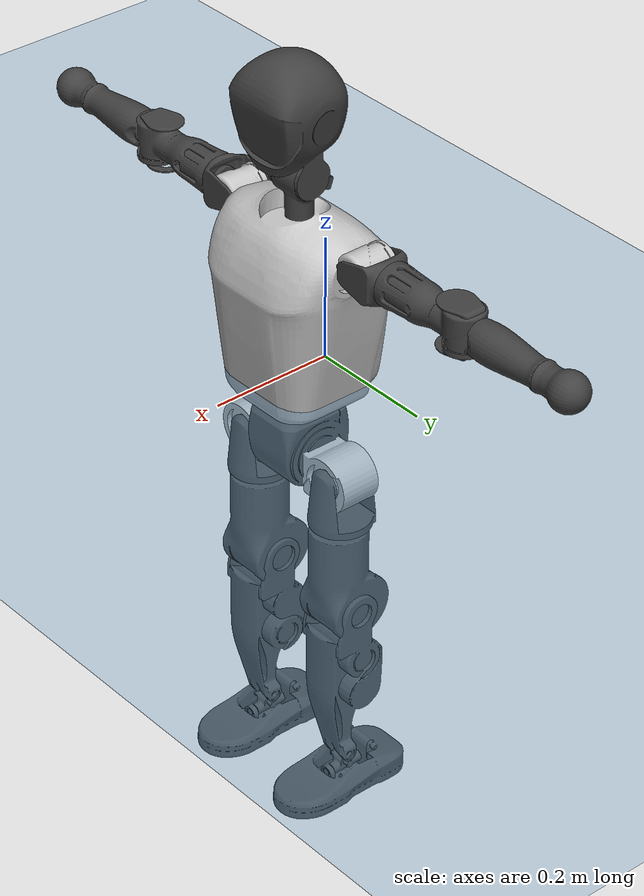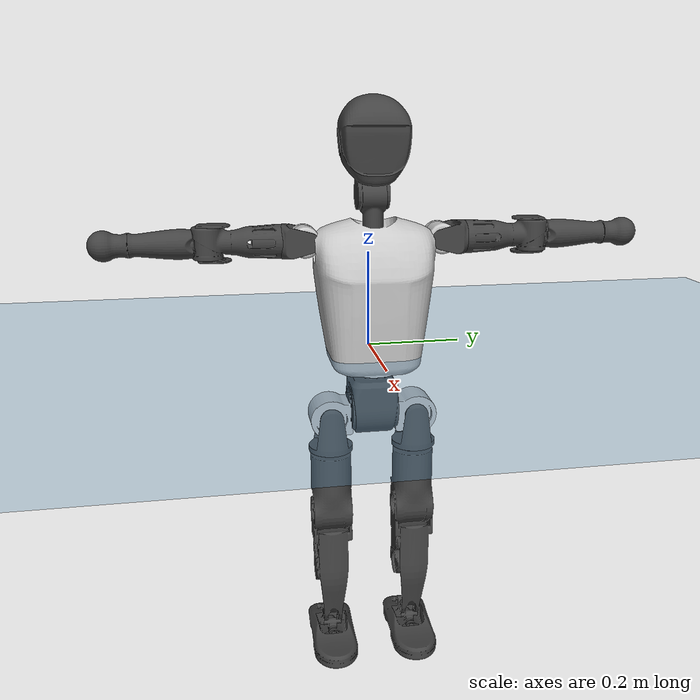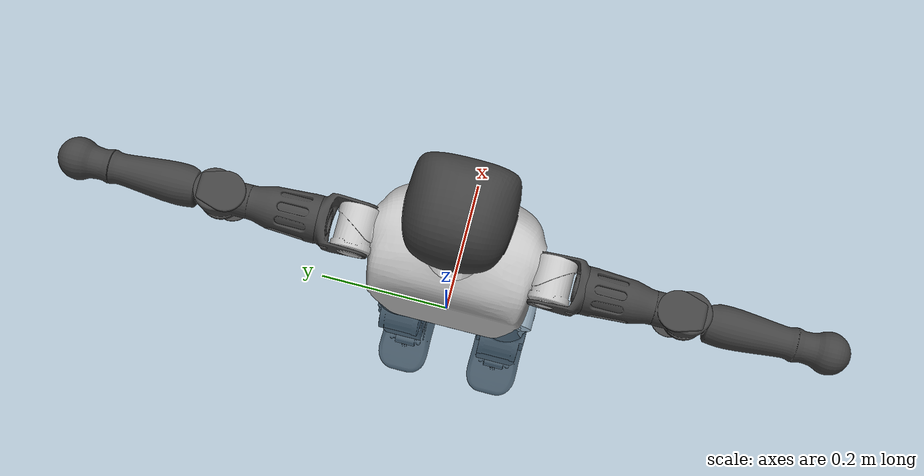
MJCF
<mujoco model="T1">
  <compiler angle="radian" assetdir="assets" balanceinertia="true" inertiafromgeom="false"/>

  <option timestep="0.005" density="1.2" viscosity="2e-05"/>

  <size nkey="1"/>

  <visual>
    <quality shadowsize="8192"/>
    <map shadowclip="0.5"/>
  </visual>

  <default>
    <default class="/">
      <joint armature="0.01" damping="0.01" frictionloss="0.1"/>
      <geom contype="0" conaffinity="0" group="1" solref="-1000 -80"/>
      <site size="0.01 0.005 0.005" group="5"/>
      <general forcelimited="true" biastype="affine" gainprm="25" biasprm="0 -25 -0.6"/>
      <default class="t1">
        <geom rgba="0.25 0.25 0.25 1"/>
        <default class="visual">
          <geom type="mesh" group="2"/>
        </default>
        <default class="collision">
          <geom group="3"/>
        </default>
        <default class="foot">
          <geom size="0.1115 0.05 0.015" type="box" condim="6" group="4" priority="1" solimp="0.015 1 0.015"/>
        </default>
        <default class="reward_collision_sphere">
          <geom group="5" rgba="1 0 0 1"/>
        </default>
      </default>
    </default>
  </default>

  <asset>
    <texture type="skybox" colorspace="auto" name="//unnamed_texture_0" builtin="gradient" rgb1="0.95 0.95 0.95" rgb2="0.95 0.95 0.95" width="100" height="600"/>
    <texture type="2d" colorspace="auto" name="texplane" builtin="checker" rgb1="0.345 0.575 0.748" rgb2="0.345 0.575 0.748" markrgb="1 1 1" width="512" height="512"/>
    <material name="MatPlane" class="/" texture="texplane" texuniform="true" texrepeat="2 2" specular="0.9"/>
    <mesh name="Trunk" class="/" file="Trunk.stl"/>
    <mesh name="H1" class="/" file="H1.stl"/>
    <mesh name="H2" class="/" file="H2.stl"/>
    <mesh name="AL1" class="/" file="AL1.stl"/>
    <mesh name="AL2" class="/" file="AL2.stl"/>
    <mesh name="AL3" class="/" file="AL3.stl"/>
    <mesh name="left_hand_link" class="/" file="left_hand_link.stl"/>
    <mesh name="AR1" class="/" file="AR1.stl"/>
    <mesh name="AR2" class="/" file="AR2.stl"/>
    <mesh name="AR3" class="/" file="AR3.stl"/>
    <mesh name="right_hand_link" class="/" file="right_hand_link.stl"/>
    <mesh name="Waist" class="/" file="Waist.stl"/>
    <mesh name="Hip_Pitch_Left" class="/" file="Hip_Pitch_Left.stl"/>
    <mesh name="Hip_Roll_Left" class="/" file="Hip_Roll_Left.stl"/>
    <mesh name="Hip_Yaw_Left" class="/" file="Hip_Yaw_Left.stl"/>
    <mesh name="Shank_Left" class="/" file="Shank_Left.stl"/>
    <mesh name="Ankle_Cross_Left" class="/" file="Ankle_Cross_Left.stl"/>
    <mesh name="left_foot_link" class="/" file="left_foot_link.stl"/>
    <mesh name="Hip_Pitch_Right" class="/" file="Hip_Pitch_Right.stl"/>
    <mesh name="Hip_Roll_Right" class="/" file="Hip_Roll_Right.stl"/>
    <mesh name="Hip_Yaw_Right" class="/" file="Hip_Yaw_Right.stl"/>
    <mesh name="Shank_Right" class="/" file="Shank_Right.stl"/>
    <mesh name="Ankle_Cross_Right" class="/" file="Ankle_Cross_Right.stl"/>
    <mesh name="right_foot_link" class="/" file="right_foot_link.stl"/>
  </asset>

  <worldbody>
    <geom name="floor" class="/" size="100 100 0.125" type="plane" group="0" material="MatPlane"/>
    <light name="toplight_shadow" class="/" pos="0 0 5" dir="0.0990148 0.0990148 -0.990148" type="directional" ambient="0.04 0.04 0.04" diffuse="0.55 0.55 0.55" specular="0.12 0.12 0.12"/>
    <light name="toplight_fill" class="/" pos="0 0 5" dir="0.0990148 0.0990148 -0.990148" type="directional" castshadow="false" ambient="0.04 0.04 0.04" diffuse="0.3 0.3 0.3" specular="0.08 0.08 0.08"/>
    <body name="trunk" childclass="t1" pos="-3.25231e-05 3.92477e-05 0.000416102" quat="1 -0.000202556 3.07794e-05 0.000160859">
      <inertial pos="0.0423907 -0.0011718 0.112415" quat="0.999968 0.00374213 -0.006812 0.00164981" mass="8.69748" diaginertia="0.0268884 0.0400453 0.0748809"/>
      <joint name="//unnamed_joint_0" type="free" armature="0" damping="0" frictionloss="0"/>
      <geom name="//unnamed_geom_1" class="visual" rgba="0.76 0.76 0.76 1" mesh="Trunk"/>
      <geom name="//unnamed_geom_2" class="collision" size="0.0681793 0.0909057 0.136359" pos="0.0469617 0 0.12793" type="box"/>
      <geom name="//unnamed_geom_3" class="reward_collision_sphere" size="0.104542" pos="0.0469617 0 0.106609"/>
      <geom name="//unnamed_geom_4" class="reward_collision_sphere" size="0.0136359" pos="0.0469617 0.0746632 0"/>
      <geom name="//unnamed_geom_5" class="reward_collision_sphere" size="0.0136359" pos="0.0469617 -0.0746632 0"/>
      <geom name="//unnamed_geom_6" class="reward_collision_sphere" size="0.0136359" pos="0.0469617 0.0939879 0.191895"/>
      <geom name="//unnamed_geom_7" class="reward_collision_sphere" size="0.0136359" pos="0.0469617 -0.0939879 0.191895"/>
      <site name="imu" pos="0.00886697 -0.00516731 -0.00482553" size="0.00909057"/>
      <camera name="track" pos="0 -1.75678 0" quat="0.707107 0.707107 0 0" mode="trackcom"/>
      <camera name="ego_camera" pos="0.0954888 0 0.447756" quat="-0.5 -0.5 0.5 0.5"/>
      <body name="H1" pos="0.0495069 0.000295822 0.258731" quat="1 -4.59004e-05 0.000218444 0.00039602">
        <inertial pos="-0.00131169 -0.001427 0.0610275" quat="0.763008 -0.0117493 -0.000226657 0.646282" mass="0.338719" diaginertia="7.178e-05 0.000117073 0.000209832"/>
        <joint name="AAHead_yaw" pos="0 0 0" axis="0.000583975 -0.000261913 1" stiffness="0.00315835" range="-1.58866 1.56041" armature="0.00904252" damping="0.00807396" frictionloss="0.0928059"/>
        <geom name="//unnamed_geom_8" class="visual" mesh="H1"/>
        <body name="H2" pos="-0.000622158 -0.00152081 0.0654751" quat="1 0.000137289 0.000117533 -3.78463e-05">
          <inertial pos="0.00705503 0.00208275 0.104671" quat="0.987939 0.108552 -0.0776626 -0.0784958" mass="0.483451" diaginertia="0.000590119 0.00101325 0.00235567"/>
          <joint name="Head_pitch" pos="0 0 0" axis="0.0012982 -0.999999 0.000461453" range="-1.22257 0.34473" armature="0.00865981" damping="0.00737968" frictionloss="0.0907148"/>
          <geom name="//unnamed_geom_9" class="visual" mesh="H2"/>
          <geom name="//unnamed_geom_10" class="collision" size="0.0727246" pos="0.00782695 0 0.117269"/>
          <geom name="//unnamed_geom_11" class="reward_collision_sphere" size="0.0818152" pos="0.0156539 0 0.106609"/>
        </body>
      </body>
      <body name="AL1" pos="0.0463208 0.0942942 0.234449" quat="1 0.000246383 0.000476909 -0.000227708">
        <inertial pos="-0.00170292 0.0383057 0.00127648" quat="0.507419 0.494891 -0.501354 0.496239" mass="0.397376" diaginertia="0.000398644 0.000675272 0.000396986"/>
        <joint name="Left_Shoulder_Pitch" pos="0 0 0" axis="-0.00285953 0.999995 -0.00149939" range="-3.33107 1.22732" armature="0.00916072" damping="0.0118858" frictionloss="0.0906648"/>
        <geom name="//unnamed_geom_12" class="visual" rgba="0.76 0.76 0.76 1" mesh="AL1"/>
        <body name="AL2" pos="2.35657e-05 0.0436672 -0.000352622" quat="0.999999 0.000886873 -0.000525581 -1.07637e-05">
          <inertial pos="0.0016209 0.0335929 -0.0004206" quat="0.486236 0.512407 -0.487819 0.51288" mass="0.125231" diaginertia="0.000119311 0.000184595 0.000246814"/>
          <joint name="Left_Shoulder_Roll" pos="0 0 0" axis="-0.999987 -0.00448373 -0.00254905" range="-1.56508 1.73158" armature="0.00868319" damping="0.00196916" frictionloss="0.0948107"/>
          <geom name="//unnamed_geom_13" class="visual" mesh="AL2"/>
          <body name="AL3" pos="-1.461e-05 0.0549489 0.000183327" quat="1 0.000217791 -0.000713474 -0.000352212">
            <inertial pos="0.000316727 0.0752735 -0.000382113" quat="0.707921 0.706288 -0.00225221 0.000114068" mass="0.779048" diaginertia="0.00383165 0.00680258 0.000879554"/>
            <joint name="Left_Elbow_Pitch" pos="0 0 0" axis="-0.000799897 -0.999999 -0.00113628" range="-2.25415 2.26197" armature="0.00898966" damping="0.0117612" frictionloss="0.0894896"/>
            <geom name="//unnamed_geom_14" class="visual" mesh="AL3"/>
            <geom name="//unnamed_geom_15" class="collision" size="0.0272717 0.0681793" pos="0 0.0439196 0" quat="0.707105 0.707108 0 0" type="cylinder"/>
            <geom name="//unnamed_geom_16" class="reward_collision_sphere" size="0.0327261"/>
            <body name="left_hand_link" pos="0.000277617 0.131373 0.000498999" quat="1 -0.000480415 0.000309374 0.000395538">
              <inertial pos="-0.000275784 0.0972039 -0.000683481" quat="0.708325 0.705866 0.00489889 0.00202792" mass="0.240403" diaginertia="0.00231294 0.0041349 0.000292258"/>
              <joint name="Left_Elbow_Yaw" pos="0 0 0" axis="-0.00781004 1.44855e-06 0.99997" range="-2.44657 0.00708476" armature="0.00920069" damping="0.0119667" frictionloss="0.0989219"/>
              <geom name="//unnamed_geom_17" class="visual" mesh="left_hand_link"/>
              <geom name="//unnamed_geom_18" class="collision" size="0.0272717 0.0795425" pos="0 0.114191 0" quat="0.707105 0.707108 0 0" type="cylinder"/>
              <geom name="//unnamed_geom_19" class="reward_collision_sphere" size="0.0454529"/>
              <geom name="//unnamed_geom_20" class="reward_collision_sphere" size="0.031817" pos="0 0.096623 0"/>
              <geom name="//unnamed_geom_21" class="reward_collision_sphere" size="0.031817" pos="0 0.188854 0"/>
            </body>
          </body>
        </body>
      </body>
      <body name="AR1" pos="0.0436274 -0.0922292 0.233459" quat="1 -0.000121861 0.000479501 6.90764e-05">
        <inertial pos="-0.000573666 -0.0395842 0.000475474" quat="0.50385 0.496721 -0.503715 0.495656" mass="0.391028" diaginertia="0.000398525 0.000673814 0.000401786"/>
        <joint name="Right_Shoulder_Pitch" pos="0 0 0" axis="-0.0064463 -0.999979 -1.50023e-05" stiffness="0.00924349" range="-1.19713 3.30033" armature="0.00918016" damping="0.0117927" frictionloss="0.090214"/>
        <geom name="//unnamed_geom_22" class="visual" rgba="0.76 0.76 0.76 1" mesh="AR1"/>
        <body name="AR2" pos="-0.00181161 -0.0399074 -0.00014086" quat="1 -0.000179352 0.000212684 0.000109033">
          <inertial pos="0.00347898 -0.034308 0.000531058" quat="0.512179 0.486926 -0.509702 0.490692" mass="0.119474" diaginertia="0.000114698 0.000174373 0.000241606"/>
          <joint name="Right_Shoulder_Roll" pos="0 0 0" axis="-0.999981 -0.00488752 0.00384715" range="-1.75691 1.5435" armature="0.00893772" damping="0.00550767" frictionloss="0.0853125"/>
          <geom name="//unnamed_geom_23" class="visual" mesh="AR2"/>
          <body name="AR3" pos="0.000578676 -0.051493 0.000659304" quat="1 7.73058e-06 5.32104e-05 -0.000204761">
            <inertial pos="-0.000383549 -0.0746935 0.000326435" quat="0.701393 0.712766 -0.0029223 -0.00195017" mass="0.776742" diaginertia="0.00383078 0.00667584 0.00085942"/>
            <joint name="Right_Elbow_Pitch" pos="0 0 0" axis="0.000424607 1 0.000131162" stiffness="0.00435179" range="-2.27319 2.26922" armature="0.00894598" damping="0.00587494" frictionloss="0.0976836"/>
            <geom name="//unnamed_geom_24" class="visual" mesh="AR3"/>
            <geom name="//unnamed_geom_25" class="collision" size="0.0272717 0.0681793" pos="0 -0.0439196 0" quat="0.707105 0.707108 0 0" type="cylinder"/>
            <geom name="//unnamed_geom_26" class="reward_collision_sphere" size="0.0327261"/>
            <body name="right_hand_link" pos="-0.00154851 -0.129833 -0.00107216" quat="1 1.52154e-05 -0.000221754 -0.00026177">
              <inertial pos="-0.000297243 -0.0963694 0.00221392" quat="0.704094 0.710091 -0.00384952 0.00270253" mass="0.24179" diaginertia="0.00235907 0.00414802 0.000290328"/>
              <joint name="Right_Elbow_Yaw" pos="0 0 0" axis="0.000993699 0.00431639 0.99999" range="-0.0114863 2.43793" armature="0.00995016" damping="0.00611117" frictionloss="0.091331"/>
              <geom name="//unnamed_geom_27" class="visual" mesh="right_hand_link"/>
              <geom name="//unnamed_geom_28" class="collision" size="0.0272717 0.0795425" pos="0 -0.114191 0" quat="0.707105 0.707108 0 0" type="cylinder"/>
              <geom name="//unnamed_geom_29" class="reward_collision_sphere" size="0.0454529"/>
              <geom name="//unnamed_geom_30" class="reward_collision_sphere" size="0.031817" pos="0 -0.096623 0"/>
              <geom name="//unnamed_geom_31" class="reward_collision_sphere" size="0.031817" pos="0 -0.188854 0"/>
            </body>
          </body>
        </body>
      </body>
      <body name="Waist" pos="0.0490519 -0.00220378 -0.123379" quat="1 -8.84046e-05 8.12649e-05 -0.000116104">
        <inertial pos="0.00294026 -0.000372113 0.0083618" quat="0.984036 -0.00381734 -0.177887 0.00384018" mass="1.92018" diaginertia="0.00156936 0.00270589 0.0065239"/>
        <joint name="Waist" pos="0 0 0" axis="-0.00275452 0.00111852 0.999996" range="-1.5347 1.55111" armature="0.00874023" damping="0.0111561" frictionloss="0.0886025"/>
        <geom name="//unnamed_geom_32" class="visual" mesh="Waist"/>
        <body name="Hip_Pitch_Left" pos="-0.000715358 0.0934568 0.000199685" quat="1 -0.00045955 -0.000245729 0.000296277">
          <inertial pos="0.00118211 -0.00500883 -0.0195747" quat="0.975137 0.221117 0.0145719 0.00174525" mass="0.770403" diaginertia="0.000531263 0.000785889 0.00173695"/>
          <joint name="Left_Hip_Pitch" pos="0 0 0" axis="-0.000724597 1 -0.000168282" range="-1.80294 1.56413" armature="0.00912709" damping="0.00496271" frictionloss="0.0910912"/>
          <geom name="//unnamed_geom_33" class="visual" rgba="0.76 0.76 0.76 1" mesh="Hip_Pitch_Left"/>
          <body name="Hip_Roll_Left" pos="-0.000423869 -2.63973e-05 -0.0207858" quat="1 4.75792e-05 -1.97655e-05 0.000243217">
            <inertial pos="0.00142591 0.000140321 -0.0565143" quat="0.706267 -0.00519777 -0.00682762 0.707894" mass="0.287623" diaginertia="0.000509022 0.000779693 0.000698164"/>
            <joint name="Left_Hip_Roll" pos="0 0 0" axis="-0.999995 0.00311015 -0.00104007" range="-1.57752 0.213148" armature="0.00905679" damping="0.00804243" frictionloss="0.0928631"/>
            <geom name="//unnamed_geom_34" class="visual" mesh="Hip_Roll_Left"/>
            <geom name="//unnamed_geom_35" class="reward_collision_sphere" size="0.0499982"/>
            <body name="Hip_Yaw_Left" pos="0.00180998 -0.00124089 -0.0878253" quat="1 9.31364e-05 0.000155304 -0.000190234">
              <inertial pos="-0.00593183 -0.000104942 -0.09465" quat="0.697465 -0.0419604 -0.0284222 0.714824" mass="1.64513" diaginertia="0.00759939 0.0129213 0.00353019"/>
              <joint name="Left_Hip_Yaw" pos="0 0 0" axis="-0.00150362 -0.00154051 -0.999998" range="-1.01064 1.01699" armature="0.00906656" damping="0.014787" frictionloss="0.0910311"/>
              <geom name="//unnamed_geom_36" class="visual" mesh="Hip_Yaw_Left"/>
              <geom name="//unnamed_geom_37" class="collision" size="0.0454529 0.0727246" type="cylinder"/>
              <body name="Shank_Left" pos="-0.00889914 0.000178123 -0.142456" quat="1 -0.000198449 -0.000256989 0.000171956">
                <inertial pos="-0.00430624 -0.000296526 -0.132417" quat="0.997497 0.000277304 -0.0247923 0.0662132" mass="1.27748" diaginertia="0.0102275 0.0178551 0.00253633"/>
                <joint name="Left_Knee_Pitch" pos="0 0 0" axis="-0.00271088 0.999986 -0.00449349" range="-0.0178031 2.34658" armature="0.00890992" damping="0.00673504" frictionloss="0.0948332"/>
                <geom name="//unnamed_geom_38" class="visual" mesh="Shank_Left"/>
                <geom name="//unnamed_geom_39" class="collision" size="0.0454529 0.0681793" pos="0 0 -0.12793" type="cylinder"/>
                <geom name="//unnamed_geom_40" class="reward_collision_sphere" size="0.0590887"/>
                <body name="Ankle_Cross_Left" pos="-6.75416e-05 0.00011303 -0.29879" quat="1 -0.000113586 0.000307656 -0.000106505">
                  <inertial pos="-0.00320138 -0.000658385 -0.0103938" quat="0.445714 0.549867 0.548415 0.445226" mass="0.0559058" diaginertia="8.74414e-06 1.36511e-05 1.59736e-05"/>
                  <joint name="Left_Ankle_Pitch" pos="0 0 0" axis="0.00165532 0.999994 -0.0030082" stiffness="0.00180018" range="-0.907875 0.335986" armature="0.00947872" damping="0.00313866" frictionloss="0.0954574"/>
                  <geom name="//unnamed_geom_41" class="visual" mesh="Ankle_Cross_Left"/>
                  <body name="left_foot_link" pos="-0.000253284 -0.000164672 -0.0148427" quat="1 -2.16089e-05 -7.8915e-05 0.000339441">
                    <inertial pos="0.000542233 -0.00126023 -0.00976559" quat="-0.000518638 0.620458 0.00109447 0.784239" mass="0.520937" diaginertia="0.000791106 0.00124955 0.00298775"/>
                    <joint name="Left_Ankle_Roll" pos="0 0 0" axis="-0.999998 -0.00101981 0.00174155" range="-0.434508 0.459461" armature="0.00898496" damping="0.0150862" frictionloss="0.0932849"/>
                    <geom name="//unnamed_geom_42" class="visual" mesh="left_foot_link"/>
                    <geom name="left_foot" class="foot" size="0.100316 0.0492033 0.0135315" pos="0.00782695 0 -0.0159913"/>
                    <geom name="//unnamed_geom_44" class="reward_collision_sphere" size="0.047271" pos="0.00782695 0 -0.0159913"/>
                    <geom name="//unnamed_geom_45" class="reward_collision_sphere" size="0.0272717" pos="0.074356 -0.020203 -0.0159913"/>
                    <geom name="//unnamed_geom_46" class="reward_collision_sphere" size="0.0272717" pos="-0.0547887 -0.020203 -0.0159913"/>
                    <site name="left_foot" class="foot" pos="0.00782695 0 -0.0159913" size="0.00909057"/>
                  </body>
                </body>
              </body>
            </body>
          </body>
        </body>
        <body name="Hip_Pitch_Right" pos="0.000450318 -0.0925478 0.000382347" quat="1 5.38154e-06 -8.90433e-07 4.81165e-08">
          <inertial pos="0.000247405 0.00587576 -0.0175468" quat="0.972698 -0.231368 0.0177307 -0.00361859" mass="0.762688" diaginertia="0.000527145 0.000761505 0.00171802"/>
          <joint name="Right_Hip_Pitch" pos="0 0 0" axis="3.39337e-05 -1 -0.000165539" range="-1.56821 1.79457" armature="0.00939737" damping="0.0101089" frictionloss="0.0876162"/>
          <geom name="//unnamed_geom_47" class="visual" rgba="0.76 0.76 0.76 1" mesh="Hip_Pitch_Right"/>
          <body name="Hip_Roll_Right" pos="-0.00162289 0.000954912 -0.0219965" quat="0.999999 -0.000326861 -0.00104421 1.61862e-05">
            <inertial pos="0.00302899 -0.000735043 -0.0569761" quat="0.708227 -0.00672053 -0.00748594 0.705913" mass="0.288965" diaginertia="0.00051194 0.000788532 0.000706557"/>
            <joint name="Right_Hip_Roll" pos="0 0 0" axis="-0.999997 -0.00185789 -0.0018491" range="-0.195364 1.57988" armature="0.00933746" damping="0.00833176" frictionloss="0.0912367"/>
            <geom name="//unnamed_geom_48" class="visual" mesh="Hip_Roll_Right"/>
            <geom name="//unnamed_geom_49" class="reward_collision_sphere" size="0.0499982"/>
            <body name="Hip_Yaw_Right" pos="0.00022049 -0.000173965 -0.087249" quat="1 -0.000702361 0.000299897 -0.000351893">
              <inertial pos="-0.00576255 -0.000583156 -0.0958924" quat="0.714614 -0.0320458 -0.0350316 0.697906" mass="1.63369" diaginertia="0.00778804 0.0137489 0.0035809"/>
              <joint name="Right_Hip_Yaw" pos="0 0 0" axis="0.000207679 0.00227266 -0.999997" range="-0.995525 0.969475" armature="0.00915041" damping="0.0104691" frictionloss="0.0852666"/>
              <geom name="//unnamed_geom_50" class="visual" mesh="Hip_Yaw_Right"/>
              <geom name="//unnamed_geom_51" class="collision" size="0.0454529 0.0727246" type="cylinder"/>
              <body name="Shank_Right" pos="-0.0118829 -0.00070431 -0.142749" quat="1 0.000517812 -3.09492e-05 1.30277e-05">
                <inertial pos="-0.00384853 -0.000811426 -0.13095" quat="0.999237 -0.00151063 -0.0247479 -0.0301768" mass="1.36767" diaginertia="0.0103463 0.0179643 0.00268288"/>
                <joint name="Right_Knee_Pitch" pos="0 0 0" axis="0.00294355 -0.999987 0.00412592" range="-2.33001 -6.96687e-05" armature="0.00931054" damping="0.00517735" frictionloss="0.0864829"/>
                <geom name="//unnamed_geom_52" class="visual" mesh="Shank_Right"/>
                <geom name="//unnamed_geom_53" class="collision" size="0.0454529 0.0681793" pos="0 0 -0.12793" type="cylinder"/>
                <geom name="//unnamed_geom_54" class="reward_collision_sphere" size="0.0590887"/>
                <body name="Ankle_Cross_Right" pos="0.00174899 -0.00104999 -0.298745" quat="1 -0.000293916 -0.000321335 0.000320344">
                  <inertial pos="-0.00277905 0.000464132 -0.0088847" quat="0.441604 0.547989 0.552894 0.446096" mass="0.0541342" diaginertia="8.52869e-06 1.34042e-05 1.55231e-05"/>
                  <joint name="Right_Ankle_Pitch" pos="0 0 0" axis="-0.00994241 -0.999944 0.00370532" range="-0.354627 0.870663" armature="0.00930149" damping="0.00689528" frictionloss="0.0826042"/>
                  <geom name="//unnamed_geom_55" class="visual" mesh="Ankle_Cross_Right"/>
                  <body name="right_foot_link" pos="0.000805703 -0.000235633 -0.013596" quat="1 5.51199e-05 0.000220303 0.000330868">
                    <inertial pos="-0.000448525 0.000238582 -0.0105533" quat="0.000152056 0.622334 0.000713623 0.782751" mass="0.513137" diaginertia="0.000785114 0.00124031 0.00301116"/>
                    <joint name="Right_Ankle_Roll" pos="0 0 0" axis="-0.99999 -0.000344668 -0.00442883" range="-0.401491 0.421145" armature="0.00900122" damping="0.00899024" frictionloss="0.0930282"/>
                    <geom name="//unnamed_geom_56" class="visual" mesh="right_foot_link"/>
                    <geom name="right_foot" class="foot" size="0.0924066 0.0454756 0.0136636" pos="0.00782695 0 -0.0159913"/>
                    <geom name="//unnamed_geom_58" class="reward_collision_sphere" size="0.0363623"/>
                    <geom name="//unnamed_geom_59" class="reward_collision_sphere" size="0.0272717" pos="0.00782695 0 -0.0159913"/>
                    <geom name="//unnamed_geom_60" class="reward_collision_sphere" size="0.0272717" pos="0.074356 0.020203 -0.0159913"/>
                    <geom name="//unnamed_geom_61" class="reward_collision_sphere" size="0.0272717" pos="-0.0547887 0.020203 -0.0159913"/>
                    <site name="right_foot" class="foot" pos="0.00782695 0 -0.0159913" size="0.00909057"/>
                  </body>
                </body>
              </body>
            </body>
          </body>
        </body>
      </body>
    </body>
  </worldbody>

  <contact>
    <pair class="/" geom1="floor" geom2="left_foot" name="//unnamed_contact_0"/>
    <pair class="/" geom1="floor" geom2="right_foot" name="//unnamed_contact_1"/>
  </contact>

  <actuator>
    <general name="AAHead_yaw" class="/" joint="AAHead_yaw" forcerange="-6.59335 6.59335" gainprm="22.9124" biasprm="0 -22.9124 -0.516338"/>
    <general name="Head_pitch" class="/" joint="Head_pitch" forcerange="-6.48487 6.48487" gainprm="22.9124" biasprm="0 -22.9124 -0.516338"/>
    <general name="Left_Shoulder_Pitch" class="/" joint="Left_Shoulder_Pitch" forcerange="-16.5306 16.5306" gainprm="22.9124" biasprm="0 -22.9124 -0.516338"/>
    <general name="Left_Shoulder_Roll" class="/" joint="Left_Shoulder_Roll" forcerange="-16.2353 16.2353" gainprm="22.9124" biasprm="0 -22.9124 -0.516338"/>
    <general name="Left_Elbow_Pitch" class="/" joint="Left_Elbow_Pitch" forcerange="-16.8734 16.8734" gainprm="22.9124" biasprm="0 -22.9124 -0.516338"/>
    <general name="Left_Elbow_Yaw" class="/" joint="Left_Elbow_Yaw" forcerange="-16.2938 16.2938" gainprm="22.9124" biasprm="0 -22.9124 -0.516338"/>
    <general name="Right_Shoulder_Pitch" class="/" joint="Right_Shoulder_Pitch" forcerange="-16.3032 16.3032" gainprm="22.9124" biasprm="0 -22.9124 -0.516338"/>
    <general name="Right_Shoulder_Roll" class="/" joint="Right_Shoulder_Roll" forcerange="-16.4073 16.4073" gainprm="22.9124" biasprm="0 -22.9124 -0.516338"/>
    <general name="Right_Elbow_Pitch" class="/" joint="Right_Elbow_Pitch" forcerange="-16.7163 16.7163" gainprm="22.9124" biasprm="0 -22.9124 -0.516338"/>
    <general name="Right_Elbow_Yaw" class="/" joint="Right_Elbow_Yaw" forcerange="-16.7955 16.7955" gainprm="22.9124" biasprm="0 -22.9124 -0.516338"/>
    <general name="Waist" class="/" joint="Waist" forcerange="-26.4469 26.4469" gainprm="22.9124" biasprm="0 -22.9124 -0.516338"/>
    <general name="Left_Hip_Pitch" class="/" joint="Left_Hip_Pitch" forcerange="-37.9716 37.9716" gainprm="22.9124" biasprm="0 -22.9124 -0.516338"/>
    <general name="Left_Hip_Roll" class="/" joint="Left_Hip_Roll" forcerange="-27.2735 27.2735" gainprm="22.9124" biasprm="0 -22.9124 -0.516338"/>
    <general name="Left_Hip_Yaw" class="/" joint="Left_Hip_Yaw" forcerange="-26.4947 26.4947" gainprm="22.9124" biasprm="0 -22.9124 -0.516338"/>
    <general name="Left_Knee_Pitch" class="/" joint="Left_Knee_Pitch" forcerange="-55.9092 55.9092" gainprm="22.9124" biasprm="0 -22.9124 -0.516338"/>
    <general name="Left_Ankle_Pitch" class="/" joint="Left_Ankle_Pitch" forcerange="-18.3853 18.3853" gainprm="22.9124" biasprm="0 -22.9124 -0.516338"/>
    <general name="Left_Ankle_Roll" class="/" joint="Left_Ankle_Roll" forcerange="-13.5213 13.5213" gainprm="22.9124" biasprm="0 -22.9124 -0.516338"/>
    <general name="Right_Hip_Pitch" class="/" joint="Right_Hip_Pitch" forcerange="-43.2454 43.2454" gainprm="22.9124" biasprm="0 -22.9124 -0.516338"/>
    <general name="Right_Hip_Roll" class="/" joint="Right_Hip_Roll" forcerange="-27.0982 27.0982" gainprm="22.9124" biasprm="0 -22.9124 -0.516338"/>
    <general name="Right_Hip_Yaw" class="/" joint="Right_Hip_Yaw" forcerange="-26.5108 26.5108" gainprm="22.9124" biasprm="0 -22.9124 -0.516338"/>
    <general name="Right_Knee_Pitch" class="/" joint="Right_Knee_Pitch" forcerange="-53.3078 53.3078" gainprm="22.9124" biasprm="0 -22.9124 -0.516338"/>
    <general name="Right_Ankle_Pitch" class="/" joint="Right_Ankle_Pitch" forcerange="-18.8308 18.8308" gainprm="22.9124" biasprm="0 -22.9124 -0.516338"/>
    <general name="Right_Ankle_Roll" class="/" joint="Right_Ankle_Roll" forcerange="-12.8734 12.8734" gainprm="22.9124" biasprm="0 -22.9124 -0.516338"/>
  </actuator>

  <sensor>
    <gyro site="imu" name="imu_angular_velocity"/>
    <velocimeter site="imu" name="imu_linear_velocity"/>
    <framelinvel objtype="site" objname="left_foot" name="left_foot_global_linear_velocity"/>
    <framelinvel objtype="site" objname="right_foot" name="right_foot_global_linear_velocity"/>
  </sensor>

  <keyframe>
    <key name="home" qpos="0 0 0.6385 1 0 0 0 0 0 0 1.4 0 -0.4 0 -1.4 0 0.4 0 -0.4 0 0 0.8 -0.4 0 0.4 0 0 -0.8 0.4 0"/>
  </keyframe>
</mujoco>
